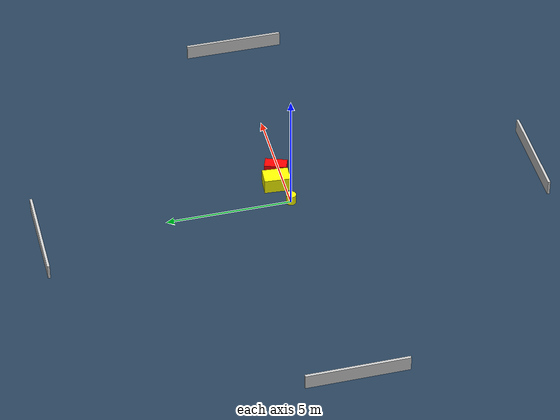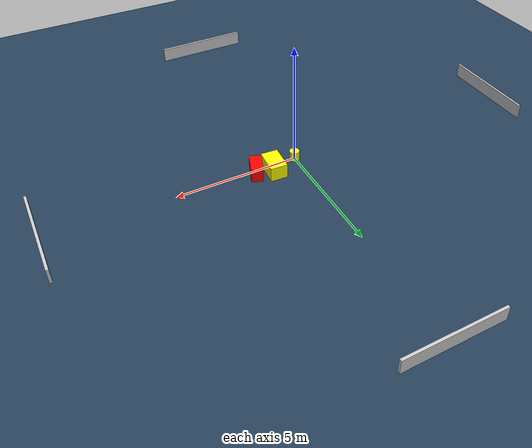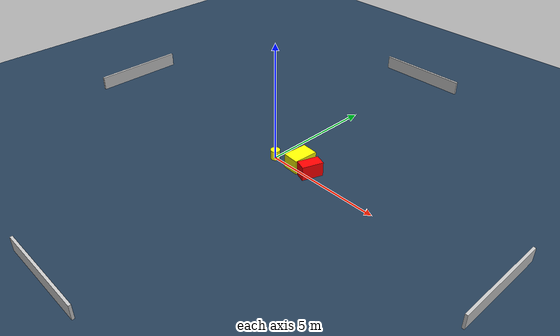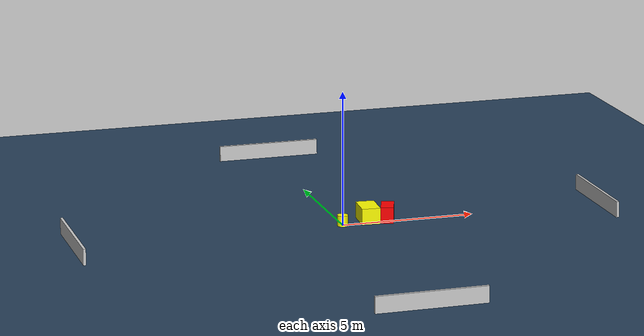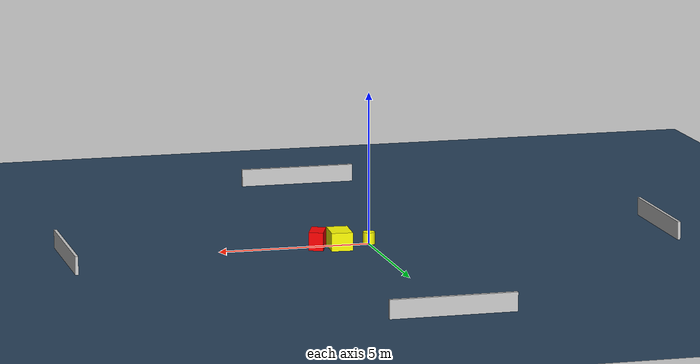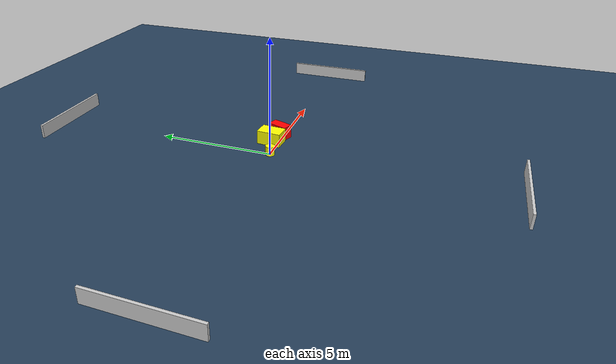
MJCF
<?xml version="1.0" ?>
<mujoco model="generated_environment">
  <option timestep="0.01" integrator="RK4" cone="elliptic"/>
  <default>
    <geom density="1"/>
  </default>
  <asset>
    <texture builtin="gradient" height="3072" name="skybox" rgb1="0.3 0.5 0.7" rgb2="0 0 0" type="skybox" width="512"/>
    <texture builtin="checker" height="300" name="groundplane" rgb1="0.2 0.3 0.4" rgb2="0.1 0.2 0.3" type="2d" width="300"/>
    <material name="groundplane" reflectance="0.2" texrepeat="5 5" texture="groundplane"/>
  </asset>
  <worldbody>
    <light dir="0 0 -1" directional="true" pos="0 0 1.5"/>
    <geom condim="3" friction="0.5 0.005 0.001" material="groundplane" name="floor" pos="0 0 0" size="0 0 0.05" type="plane"/>
    <body name="walls">
      <geom name="wall_1" condim="4" pos="-10.0 0.0 0.3" rgba="0.800000011920929 0.800000011920929 0.800000011920929 1.0" size="0.05 2.0 0.3" type="box"/>
      <geom name="wall_2" condim="4" pos="10.0 0.0 0.3" rgba="0.800000011920929 0.800000011920929 0.800000011920929 1.0" size="0.05 2.0 0.3" type="box"/>
      <geom name="wall_3" condim="4" pos="0.0 -10.0 0.3" rgba="0.800000011920929 0.800000011920929 0.800000011920929 1.0" size="2.0 0.05 0.3" type="box"/>
      <geom name="wall_4" condim="4" pos="0.0 10.0 0.3" rgba="0.800000011920929 0.800000011920929 0.800000011920929 1.0" size="2.0 0.05 0.3" type="box"/>
    </body>
    <body name="robot">
      <joint name="joint_x" type="slide" pos="0 0 0" axis="1 0 0"/>
      <joint name="joint_y" type="slide" pos="0 0 0" axis="0 1 0"/>
      <geom name="robot" type="cylinder" pos="0.0 0.0 0.2" size="0.2 0.2 0.0" mass="5.0" friction="1.0 0.005 0.0001" condim="4" rgba="1.0 1.0 0.0 1.0"/>
    </body>
    <body name="obstacle_1_movable">
      <geom name="obstacle_1_movable" condim="4" pos="1.0758502706519728 0.33502185116808164 0.3" euler="0 0 266.0560893544455" friction="0.0 0.005 0.001" rgba="1.0 1.0 0.0 1.0" size="0.521288605949018 0.3476017504829902 0.3" type="box" mass="0.1"/>
      <joint type="free"/>
    </body>
    <body name="obstacle_2_static">
      <geom name="obstacle_2_static" condim="4" pos="1.7751014009848098 0.18001809555212225 0.3" euler="0 0 340.27375909143944" friction="0.0 0.005 0.001" rgba="1.0 0.0 0.0 1.0" size="0.23724931423213014 0.4459639003665075 0.3" type="box"/>
    </body>
  </worldbody>
  <actuator>
    <motor name="actuator_x" joint="joint_x" gear="1" ctrlrange="-1 1"/>
    <motor name="actuator_y" joint="joint_y" gear="1" ctrlrange="-1 1"/>
  </actuator>
</mujoco>
